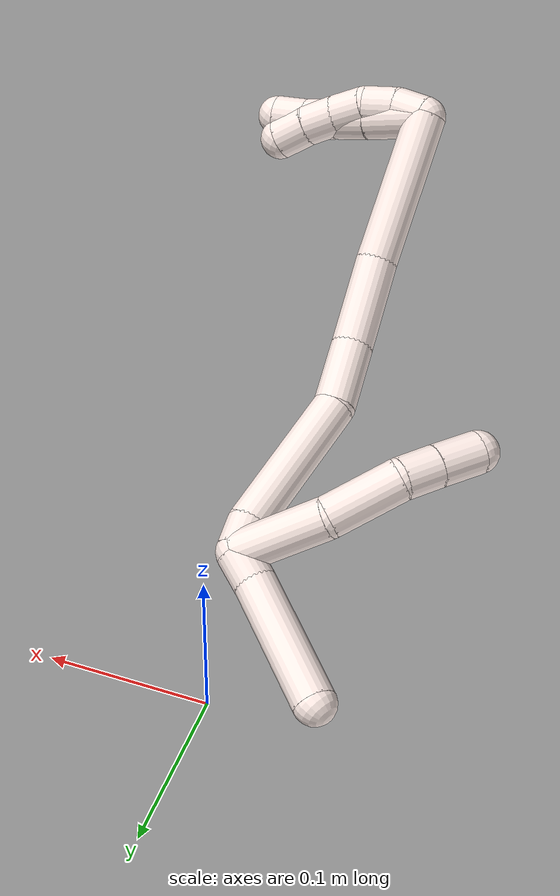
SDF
<sdf version="1.7">
 <world name="default">
  <model name="11">
   <static>0</static>
   <link name="11">
    <collision name="collision-cylinder-e_1_2_8">
     <pose>-0.007079 -0.024327 -0.011991 2.02875 -0.255302 -0.407002</pose>
     <geometry><cylinder><radius>0.0125</radius><length>0.05606</length></cylinder></geometry>
     <surface>
      <friction><ode><mu>1.16</mu><mu2>1.16</mu2><slip1>0</slip1><slip2>0</slip2></ode></friction>
      <contact><ode><kp>1e+06</kp><kd>1</kd><max_vel>0</max_vel><min_depth>0.001</min_depth></ode></contact>
     </surface>
    </collision>
    <visual name="visual-cylinder-e_1_2_8">
     <pose>-0.007079 -0.024327 -0.011991 2.02875 -0.255302 -0.407002</pose>
     <geometry><cylinder><radius>0.0125</radius><length>0.05606</length></cylinder></geometry>
     <material><ambient>1 0.933333 0.909804 1</ambient></material>
    </visual>
    <collision name="collision-cylinder-e_2_8_9">
     <pose>-0.014983 -0.07062 -0.029324 1.80937 -0.036519 -0.046463</pose>
     <geometry><cylinder><radius>0.0125</radius><length>0.045243</length></cylinder></geometry>
     <surface>
      <friction><ode><mu>1.16</mu><mu2>1.16</mu2><slip1>0</slip1><slip2>0</slip2></ode></friction>
      <contact><ode><kp>1e+06</kp><kd>1</kd><max_vel>0</max_vel><min_depth>0.001</min_depth></ode></contact>
     </surface>
    </collision>
    <visual name="visual-cylinder-e_2_8_9">
     <pose>-0.014983 -0.07062 -0.029324 1.80937 -0.036519 -0.046463</pose>
     <geometry><cylinder><radius>0.0125</radius><length>0.045243</length></cylinder></geometry>
     <material><ambient>1 0.933333 0.909804 1</ambient></material>
    </visual>
    <collision name="collision-cylinder-e_3_9_10">
     <pose>-0.012526 -0.102871 -0.037179 1.81037 0.300698 0.381216</pose>
     <geometry><cylinder><radius>0.0125</radius><length>0.02217</length></cylinder></geometry>
     <surface>
      <friction><ode><mu>1.16</mu><mu2>1.16</mu2><slip1>0</slip1><slip2>0</slip2></ode></friction>
      <contact><ode><kp>1e+06</kp><kd>1</kd><max_vel>0</max_vel><min_depth>0.001</min_depth></ode></contact>
     </surface>
    </collision>
    <visual name="visual-cylinder-e_3_9_10">
     <pose>-0.012526 -0.102871 -0.037179 1.81037 0.300698 0.381216</pose>
     <geometry><cylinder><radius>0.0125</radius><length>0.02217</length></cylinder></geometry>
     <material><ambient>1 0.933333 0.909804 1</ambient></material>
    </visual>
    <collision name="collision-cylinder-e_4_10_6">
     <pose>-0.005099 -0.125358 -0.042829 1.82254 0.317753 0.407566</pose>
     <geometry><cylinder><radius>0.0125</radius><length>0.026527</length></cylinder></geometry>
     <surface>
      <friction><ode><mu>1.16</mu><mu2>1.16</mu2><slip1>0</slip1><slip2>0</slip2></ode></friction>
      <contact><ode><kp>1e+06</kp><kd>1</kd><max_vel>0</max_vel><min_depth>0.001</min_depth></ode></contact>
     </surface>
    </collision>
    <visual name="visual-cylinder-e_4_10_6">
     <pose>-0.005099 -0.125358 -0.042829 1.82254 0.317753 0.407566</pose>
     <geometry><cylinder><radius>0.0125</radius><length>0.026527</length></cylinder></geometry>
     <material><ambient>1 0.933333 0.909804 1</ambient></material>
    </visual>
    <collision name="collision-cylinder-e_1_2_11">
     <pose>0.000816 0.001931 -0.010253 -2.95542 0.078021 -0.791978</pose>
     <geometry><cylinder><radius>0.0125</radius><length>0.020931</length></cylinder></geometry>
     <surface>
      <friction><ode><mu>1.16</mu><mu2>1.16</mu2><slip1>0</slip1><slip2>0</slip2></ode></friction>
      <contact><ode><kp>1e+06</kp><kd>1</kd><max_vel>0</max_vel><min_depth>0.001</min_depth></ode></contact>
     </surface>
    </collision>
    <visual name="visual-cylinder-e_1_2_11">
     <pose>0.000816 0.001931 -0.010253 -2.95542 0.078021 -0.791978</pose>
     <geometry><cylinder><radius>0.0125</radius><length>0.020931</length></cylinder></geometry>
     <material><ambient>1 0.933333 0.909804 1</ambient></material>
    </visual>
    <collision name="collision-cylinder-e_2_11_5">
     <pose>-0.001708 0.013312 -0.05875 -2.89935 -0.084577 0.669146</pose>
     <geometry><cylinder><radius>0.0125</radius><length>0.079069</length></cylinder></geometry>
     <surface>
      <friction><ode><mu>1.16</mu><mu2>1.16</mu2><slip1>0</slip1><slip2>0</slip2></ode></friction>
      <contact><ode><kp>1e+06</kp><kd>1</kd><max_vel>0</max_vel><min_depth>0.001</min_depth></ode></contact>
     </surface>
    </collision>
    <visual name="visual-cylinder-e_2_11_5">
     <pose>-0.001708 0.013312 -0.05875 -2.89935 -0.084577 0.669146</pose>
     <geometry><cylinder><radius>0.0125</radius><length>0.079069</length></cylinder></geometry>
     <material><ambient>1 0.933333 0.909804 1</ambient></material>
    </visual>
    <collision name="collision-cylinder-e_1_2_12">
     <pose>0.002689 -0.008013 0.005782 0.945713 0.265652 0.136491</pose>
     <geometry><cylinder><radius>0.0125</radius><length>0.020482</length></cylinder></geometry>
     <surface>
      <friction><ode><mu>1.16</mu><mu2>1.16</mu2><slip1>0</slip1><slip2>0</slip2></ode></friction>
      <contact><ode><kp>1e+06</kp><kd>1</kd><max_vel>0</max_vel><min_depth>0.001</min_depth></ode></contact>
     </surface>
    </collision>
    <visual name="visual-cylinder-e_1_2_12">
     <pose>0.002689 -0.008013 0.005782 0.945713 0.265652 0.136491</pose>
     <geometry><cylinder><radius>0.0125</radius><length>0.020482</length></cylinder></geometry>
     <material><ambient>1 0.933333 0.909804 1</ambient></material>
    </visual>
    <collision name="collision-cylinder-e_2_12_13">
     <pose>0.010461 -0.05803 0.024986 1.26153 0.114794 0.083875</pose>
     <geometry><cylinder><radius>0.0125</radius><length>0.088776</length></cylinder></geometry>
     <surface>
      <friction><ode><mu>1.16</mu><mu2>1.16</mu2><slip1>0</slip1><slip2>0</slip2></ode></friction>
      <contact><ode><kp>1e+06</kp><kd>1</kd><max_vel>0</max_vel><min_depth>0.001</min_depth></ode></contact>
     </surface>
    </collision>
    <visual name="visual-cylinder-e_2_12_13">
     <pose>0.010461 -0.05803 0.024986 1.26153 0.114794 0.083875</pose>
     <geometry><cylinder><radius>0.0125</radius><length>0.088776</length></cylinder></geometry>
     <material><ambient>1 0.933333 0.909804 1</ambient></material>
    </visual>
    <collision name="collision-cylinder-e_3_13_14">
     <pose>0.016997 -0.116756 0.050495 0.944838 0.070204 0.035886</pose>
     <geometry><cylinder><radius>0.0125</radius><length>0.041369</length></cylinder></geometry>
     <surface>
      <friction><ode><mu>1.16</mu><mu2>1.16</mu2><slip1>0</slip1><slip2>0</slip2></ode></friction>
      <contact><ode><kp>1e+06</kp><kd>1</kd><max_vel>0</max_vel><min_depth>0.001</min_depth></ode></contact>
     </surface>
    </collision>
    <visual name="visual-cylinder-e_3_13_14">
     <pose>0.016997 -0.116756 0.050495 0.944838 0.070204 0.035886</pose>
     <geometry><cylinder><radius>0.0125</radius><length>0.041369</length></cylinder></geometry>
     <material><ambient>1 0.933333 0.909804 1</ambient></material>
    </visual>
    <collision name="collision-cylinder-e_4_14_15">
     <pose>0.015084 -0.156402 0.077637 0.989762 -0.122028 -0.065913</pose>
     <geometry><cylinder><radius>0.0125</radius><length>0.055262</length></cylinder></geometry>
     <surface>
      <friction><ode><mu>1.16</mu><mu2>1.16</mu2><slip1>0</slip1><slip2>0</slip2></ode></friction>
      <contact><ode><kp>1e+06</kp><kd>1</kd><max_vel>0</max_vel><min_depth>0.001</min_depth></ode></contact>
     </surface>
    </collision>
    <visual name="visual-cylinder-e_4_14_15">
     <pose>0.015084 -0.156402 0.077637 0.989762 -0.122028 -0.065913</pose>
     <geometry><cylinder><radius>0.0125</radius><length>0.055262</length></cylinder></geometry>
     <material><ambient>1 0.933333 0.909804 1</ambient></material>
    </visual>
    <collision name="collision-cylinder-e_5_15_1">
     <pose>0.000209 -0.219277 0.114729 1.06671 -0.247161 -0.146417</pose>
     <geometry><cylinder><radius>0.0125</radius><length>0.094111</length></cylinder></geometry>
     <surface>
      <friction><ode><mu>1.16</mu><mu2>1.16</mu2><slip1>0</slip1><slip2>0</slip2></ode></friction>
      <contact><ode><kp>1e+06</kp><kd>1</kd><max_vel>0</max_vel><min_depth>0.001</min_depth></ode></contact>
     </surface>
    </collision>
    <visual name="visual-cylinder-e_5_15_1">
     <pose>0.000209 -0.219277 0.114729 1.06671 -0.247161 -0.146417</pose>
     <geometry><cylinder><radius>0.0125</radius><length>0.094111</length></cylinder></geometry>
     <material><ambient>1 0.933333 0.909804 1</ambient></material>
    </visual>
    <collision name="collision-cylinder-e_1_1_16">
     <pose>-0.010223 -0.255882 0.146128 -0.343263 0.1083 -0.01879</pose>
     <geometry><cylinder><radius>0.0125</radius><length>0.02</length></cylinder></geometry>
     <surface>
      <friction><ode><mu>1.16</mu><mu2>1.16</mu2><slip1>0</slip1><slip2>0</slip2></ode></friction>
      <contact><ode><kp>1e+06</kp><kd>1</kd><max_vel>0</max_vel><min_depth>0.001</min_depth></ode></contact>
     </surface>
    </collision>
    <visual name="visual-cylinder-e_1_1_16">
     <pose>-0.010223 -0.255882 0.146128 -0.343263 0.1083 -0.01879</pose>
     <geometry><cylinder><radius>0.0125</radius><length>0.02</length></cylinder></geometry>
     <material><ambient>1 0.933333 0.909804 1</ambient></material>
    </visual>
    <collision name="collision-cylinder-e_2_16_17">
     <pose>-0.008488 -0.246293 0.163274 -0.675959 0.065458 -0.023013</pose>
     <geometry><cylinder><radius>0.0125</radius><length>0.02</length></cylinder></geometry>
     <surface>
      <friction><ode><mu>1.16</mu><mu2>1.16</mu2><slip1>0</slip1><slip2>0</slip2></ode></friction>
      <contact><ode><kp>1e+06</kp><kd>1</kd><max_vel>0</max_vel><min_depth>0.001</min_depth></ode></contact>
     </surface>
    </collision>
    <visual name="visual-cylinder-e_2_16_17">
     <pose>-0.008488 -0.246293 0.163274 -0.675959 0.065458 -0.023013</pose>
     <geometry><cylinder><radius>0.0125</radius><length>0.02</length></cylinder></geometry>
     <material><ambient>1 0.933333 0.909804 1</ambient></material>
    </visual>
    <collision name="collision-cylinder-e_3_17_18">
     <pose>-0.004312 -0.232946 0.177151 -0.86183 0.359837 -0.166848</pose>
     <geometry><cylinder><radius>0.0125</radius><length>0.02</length></cylinder></geometry>
     <surface>
      <friction><ode><mu>1.16</mu><mu2>1.16</mu2><slip1>0</slip1><slip2>0</slip2></ode></friction>
      <contact><ode><kp>1e+06</kp><kd>1</kd><max_vel>0</max_vel><min_depth>0.001</min_depth></ode></contact>
     </surface>
    </collision>
    <visual name="visual-cylinder-e_3_17_18">
     <pose>-0.004312 -0.232946 0.177151 -0.86183 0.359837 -0.166848</pose>
     <geometry><cylinder><radius>0.0125</radius><length>0.02</length></cylinder></geometry>
     <material><ambient>1 0.933333 0.909804 1</ambient></material>
    </visual>
    <collision name="collision-cylinder-e_4_18_19">
     <pose>0.002166 -0.21799 0.188687 -0.964677 0.30019 -0.158037</pose>
     <geometry><cylinder><radius>0.0125</radius><length>0.02</length></cylinder></geometry>
     <surface>
      <friction><ode><mu>1.16</mu><mu2>1.16</mu2><slip1>0</slip1><slip2>0</slip2></ode></friction>
      <contact><ode><kp>1e+06</kp><kd>1</kd><max_vel>0</max_vel><min_depth>0.001</min_depth></ode></contact>
     </surface>
    </collision>
    <visual name="visual-cylinder-e_4_18_19">
     <pose>0.002166 -0.21799 0.188687 -0.964677 0.30019 -0.158037</pose>
     <geometry><cylinder><radius>0.0125</radius><length>0.02</length></cylinder></geometry>
     <material><ambient>1 0.933333 0.909804 1</ambient></material>
    </visual>
    <collision name="collision-cylinder-e_5_19_4">
     <pose>0.00873 -0.202017 0.198713 -1.05703 0.369076 -0.217135</pose>
     <geometry><cylinder><radius>0.0125</radius><length>0.02</length></cylinder></geometry>
     <surface>
      <friction><ode><mu>1.16</mu><mu2>1.16</mu2><slip1>0</slip1><slip2>0</slip2></ode></friction>
      <contact><ode><kp>1e+06</kp><kd>1</kd><max_vel>0</max_vel><min_depth>0.001</min_depth></ode></contact>
     </surface>
    </collision>
    <visual name="visual-cylinder-e_5_19_4">
     <pose>0.00873 -0.202017 0.198713 -1.05703 0.369076 -0.217135</pose>
     <geometry><cylinder><radius>0.0125</radius><length>0.02</length></cylinder></geometry>
     <material><ambient>1 0.933333 0.909804 1</ambient></material>
    </visual>
    <collision name="collision-cylinder-e_1_1_20">
     <pose>-0.00663 -0.248403 0.151214 -0.642989 0.253314 -0.084769</pose>
     <geometry><cylinder><radius>0.0125</radius><length>0.037296</length></cylinder></geometry>
     <surface>
      <friction><ode><mu>1.16</mu><mu2>1.16</mu2><slip1>0</slip1><slip2>0</slip2></ode></friction>
      <contact><ode><kp>1e+06</kp><kd>1</kd><max_vel>0</max_vel><min_depth>0.001</min_depth></ode></contact>
     </surface>
    </collision>
    <visual name="visual-cylinder-e_1_1_20">
     <pose>-0.00663 -0.248403 0.151214 -0.642989 0.253314 -0.084769</pose>
     <geometry><cylinder><radius>0.0125</radius><length>0.037296</length></cylinder></geometry>
     <material><ambient>1 0.933333 0.909804 1</ambient></material>
    </visual>
    <collision name="collision-cylinder-e_2_20_21">
     <pose>0.000625 -0.231612 0.174482 -0.594807 0.237838 -0.073209</pose>
     <geometry><cylinder><radius>0.0125</radius><length>0.021915</length></cylinder></geometry>
     <surface>
      <friction><ode><mu>1.16</mu><mu2>1.16</mu2><slip1>0</slip1><slip2>0</slip2></ode></friction>
      <contact><ode><kp>1e+06</kp><kd>1</kd><max_vel>0</max_vel><min_depth>0.001</min_depth></ode></contact>
     </surface>
    </collision>
    <visual name="visual-cylinder-e_2_20_21">
     <pose>0.000625 -0.231612 0.174482 -0.594807 0.237838 -0.073209</pose>
     <geometry><cylinder><radius>0.0125</radius><length>0.021915</length></cylinder></geometry>
     <material><ambient>1 0.933333 0.909804 1</ambient></material>
    </visual>
    <collision name="collision-cylinder-e_3_21_22">
     <pose>0.005677 -0.219805 0.191516 -0.618075 0.240441 -0.077098</pose>
     <geometry><cylinder><radius>0.0125</radius><length>0.020753</length></cylinder></geometry>
     <surface>
      <friction><ode><mu>1.16</mu><mu2>1.16</mu2><slip1>0</slip1><slip2>0</slip2></ode></friction>
      <contact><ode><kp>1e+06</kp><kd>1</kd><max_vel>0</max_vel><min_depth>0.001</min_depth></ode></contact>
     </surface>
    </collision>
    <visual name="visual-cylinder-e_3_21_22">
     <pose>0.005677 -0.219805 0.191516 -0.618075 0.240441 -0.077098</pose>
     <geometry><cylinder><radius>0.0125</radius><length>0.020753</length></cylinder></geometry>
     <material><ambient>1 0.933333 0.909804 1</ambient></material>
    </visual>
    <collision name="collision-cylinder-e_4_22_3">
     <pose>0.009175 -0.20858 0.208115 -0.570835 0.102675 -0.030152</pose>
     <geometry><cylinder><radius>0.0125</radius><length>0.020036</length></cylinder></geometry>
     <surface>
      <friction><ode><mu>1.16</mu><mu2>1.16</mu2><slip1>0</slip1><slip2>0</slip2></ode></friction>
      <contact><ode><kp>1e+06</kp><kd>1</kd><max_vel>0</max_vel><min_depth>0.001</min_depth></ode></contact>
     </surface>
    </collision>
    <visual name="visual-cylinder-e_4_22_3">
     <pose>0.009175 -0.20858 0.208115 -0.570835 0.102675 -0.030152</pose>
     <geometry><cylinder><radius>0.0125</radius><length>0.020036</length></cylinder></geometry>
     <material><ambient>1 0.933333 0.909804 1</ambient></material>
    </visual>
    <collision name="collision-sphere-3">
     <pose>0.010202 -0.203196 0.2165 0 -0 0</pose>
     <geometry><sphere><radius>0.0125</radius></sphere></geometry>
     <surface>
      <friction><ode><mu>1.16</mu><mu2>1.16</mu2><slip1>0</slip1><slip2>0</slip2></ode></friction>
      <contact><ode><kp>1e+06</kp><kd>1</kd><max_vel>0</max_vel><min_depth>0.001</min_depth></ode></contact>
     </surface>
    </collision>
    <visual name="visual-sphere-3">
     <pose>0.010202 -0.203196 0.2165 0 -0 0</pose>
     <geometry><sphere><radius>0.0125</radius></sphere></geometry>
     <material><ambient>1 0.933333 0.909804 1</ambient></material>
    </visual>
    <collision name="collision-sphere-22">
     <pose>0.008148 -0.213965 0.199729 0 -0 0</pose>
     <geometry><sphere><radius>0.0125</radius></sphere></geometry>
     <surface>
      <friction><ode><mu>1.16</mu><mu2>1.16</mu2><slip1>0</slip1><slip2>0</slip2></ode></friction>
      <contact><ode><kp>1e+06</kp><kd>1</kd><max_vel>0</max_vel><min_depth>0.001</min_depth></ode></contact>
     </surface>
    </collision>
    <visual name="visual-sphere-22">
     <pose>0.008148 -0.213965 0.199729 0 -0 0</pose>
     <geometry><sphere><radius>0.0125</radius></sphere></geometry>
     <material><ambient>1 0.933333 0.909804 1</ambient></material>
    </visual>
    <collision name="collision-sphere-21">
     <pose>0.003207 -0.225645 0.183302 0 -0 0</pose>
     <geometry><sphere><radius>0.0125</radius></sphere></geometry>
     <surface>
      <friction><ode><mu>1.16</mu><mu2>1.16</mu2><slip1>0</slip1><slip2>0</slip2></ode></friction>
      <contact><ode><kp>1e+06</kp><kd>1</kd><max_vel>0</max_vel><min_depth>0.001</min_depth></ode></contact>
     </surface>
    </collision>
    <visual name="visual-sphere-21">
     <pose>0.003207 -0.225645 0.183302 0 -0 0</pose>
     <geometry><sphere><radius>0.0125</radius></sphere></geometry>
     <material><ambient>1 0.933333 0.909804 1</ambient></material>
    </visual>
    <collision name="collision-sphere-20">
     <pose>-0.001957 -0.237579 0.165662 0 -0 0</pose>
     <geometry><sphere><radius>0.0125</radius></sphere></geometry>
     <surface>
      <friction><ode><mu>1.16</mu><mu2>1.16</mu2><slip1>0</slip1><slip2>0</slip2></ode></friction>
      <contact><ode><kp>1e+06</kp><kd>1</kd><max_vel>0</max_vel><min_depth>0.001</min_depth></ode></contact>
     </surface>
    </collision>
    <visual name="visual-sphere-20">
     <pose>-0.001957 -0.237579 0.165662 0 -0 0</pose>
     <geometry><sphere><radius>0.0125</radius></sphere></geometry>
     <material><ambient>1 0.933333 0.909804 1</ambient></material>
    </visual>
    <collision name="collision-sphere-4">
     <pose>0.012338 -0.193894 0.203296 0 -0 0</pose>
     <geometry><sphere><radius>0.0125</radius></sphere></geometry>
     <surface>
      <friction><ode><mu>1.16</mu><mu2>1.16</mu2><slip1>0</slip1><slip2>0</slip2></ode></friction>
      <contact><ode><kp>1e+06</kp><kd>1</kd><max_vel>0</max_vel><min_depth>0.001</min_depth></ode></contact>
     </surface>
    </collision>
    <visual name="visual-sphere-4">
     <pose>0.012338 -0.193894 0.203296 0 -0 0</pose>
     <geometry><sphere><radius>0.0125</radius></sphere></geometry>
     <material><ambient>1 0.933333 0.909804 1</ambient></material>
    </visual>
    <collision name="collision-sphere-11">
     <pose>0.001631 0.003863 -0.020507 0 -0 0</pose>
     <geometry><sphere><radius>0.0125</radius></sphere></geometry>
     <surface>
      <friction><ode><mu>1.16</mu><mu2>1.16</mu2><slip1>0</slip1><slip2>0</slip2></ode></friction>
      <contact><ode><kp>1e+06</kp><kd>1</kd><max_vel>0</max_vel><min_depth>0.001</min_depth></ode></contact>
     </surface>
    </collision>
    <visual name="visual-sphere-11">
     <pose>0.001631 0.003863 -0.020507 0 -0 0</pose>
     <geometry><sphere><radius>0.0125</radius></sphere></geometry>
     <material><ambient>1 0.933333 0.909804 1</ambient></material>
    </visual>
    <collision name="collision-sphere-6">
     <pose>-0.000955 -0.137561 -0.045968 0 -0 0</pose>
     <geometry><sphere><radius>0.0125</radius></sphere></geometry>
     <surface>
      <friction><ode><mu>1.16</mu><mu2>1.16</mu2><slip1>0</slip1><slip2>0</slip2></ode></friction>
      <contact><ode><kp>1e+06</kp><kd>1</kd><max_vel>0</max_vel><min_depth>0.001</min_depth></ode></contact>
     </surface>
    </collision>
    <visual name="visual-sphere-6">
     <pose>-0.000955 -0.137561 -0.045968 0 -0 0</pose>
     <geometry><sphere><radius>0.0125</radius></sphere></geometry>
     <material><ambient>1 0.933333 0.909804 1</ambient></material>
    </visual>
    <collision name="collision-sphere-10">
     <pose>-0.009243 -0.113156 -0.039691 0 -0 0</pose>
     <geometry><sphere><radius>0.0125</radius></sphere></geometry>
     <surface>
      <friction><ode><mu>1.16</mu><mu2>1.16</mu2><slip1>0</slip1><slip2>0</slip2></ode></friction>
      <contact><ode><kp>1e+06</kp><kd>1</kd><max_vel>0</max_vel><min_depth>0.001</min_depth></ode></contact>
     </surface>
    </collision>
    <visual name="visual-sphere-10">
     <pose>-0.009243 -0.113156 -0.039691 0 -0 0</pose>
     <geometry><sphere><radius>0.0125</radius></sphere></geometry>
     <material><ambient>1 0.933333 0.909804 1</ambient></material>
    </visual>
    <collision name="collision-sphere-9">
     <pose>-0.015809 -0.092585 -0.034666 0 -0 0</pose>
     <geometry><sphere><radius>0.0125</radius></sphere></geometry>
     <surface>
      <friction><ode><mu>1.16</mu><mu2>1.16</mu2><slip1>0</slip1><slip2>0</slip2></ode></friction>
      <contact><ode><kp>1e+06</kp><kd>1</kd><max_vel>0</max_vel><min_depth>0.001</min_depth></ode></contact>
     </surface>
    </collision>
    <visual name="visual-sphere-9">
     <pose>-0.015809 -0.092585 -0.034666 0 -0 0</pose>
     <geometry><sphere><radius>0.0125</radius></sphere></geometry>
     <material><ambient>1 0.933333 0.909804 1</ambient></material>
    </visual>
    <collision name="collision-sphere-2">
     <geometry><sphere><radius>0.0125</radius></sphere></geometry>
     <surface>
      <friction><ode><mu>1.16</mu><mu2>1.16</mu2><slip1>0</slip1><slip2>0</slip2></ode></friction>
      <contact><ode><kp>1e+06</kp><kd>1</kd><max_vel>0</max_vel><min_depth>0.001</min_depth></ode></contact>
     </surface>
    </collision>
    <visual name="visual-sphere-2">
     <geometry><sphere><radius>0.0125</radius></sphere></geometry>
     <material><ambient>1 0.933333 0.909804 1</ambient></material>
    </visual>
    <collision name="collision-sphere-19">
     <pose>0.005123 -0.210139 0.194129 0 -0 0</pose>
     <geometry><sphere><radius>0.0125</radius></sphere></geometry>
     <surface>
      <friction><ode><mu>1.16</mu><mu2>1.16</mu2><slip1>0</slip1><slip2>0</slip2></ode></friction>
      <contact><ode><kp>1e+06</kp><kd>1</kd><max_vel>0</max_vel><min_depth>0.001</min_depth></ode></contact>
     </surface>
    </collision>
    <visual name="visual-sphere-19">
     <pose>0.005123 -0.210139 0.194129 0 -0 0</pose>
     <geometry><sphere><radius>0.0125</radius></sphere></geometry>
     <material><ambient>1 0.933333 0.909804 1</ambient></material>
    </visual>
    <collision name="collision-sphere-8">
     <pose>-0.014157 -0.048654 -0.023982 0 -0 0</pose>
     <geometry><sphere><radius>0.0125</radius></sphere></geometry>
     <surface>
      <friction><ode><mu>1.16</mu><mu2>1.16</mu2><slip1>0</slip1><slip2>0</slip2></ode></friction>
      <contact><ode><kp>1e+06</kp><kd>1</kd><max_vel>0</max_vel><min_depth>0.001</min_depth></ode></contact>
     </surface>
    </collision>
    <visual name="visual-sphere-8">
     <pose>-0.014157 -0.048654 -0.023982 0 -0 0</pose>
     <geometry><sphere><radius>0.0125</radius></sphere></geometry>
     <material><ambient>1 0.933333 0.909804 1</ambient></material>
    </visual>
    <collision name="collision-sphere-5">
     <pose>-0.005048 0.022762 -0.096993 0 -0 0</pose>
     <geometry><sphere><radius>0.0125</radius></sphere></geometry>
     <surface>
      <friction><ode><mu>1.16</mu><mu2>1.16</mu2><slip1>0</slip1><slip2>0</slip2></ode></friction>
      <contact><ode><kp>1e+06</kp><kd>1</kd><max_vel>0</max_vel><min_depth>0.001</min_depth></ode></contact>
     </surface>
    </collision>
    <visual name="visual-sphere-5">
     <pose>-0.005048 0.022762 -0.096993 0 -0 0</pose>
     <geometry><sphere><radius>0.0125</radius></sphere></geometry>
     <material><ambient>1 0.933333 0.909804 1</ambient></material>
    </visual>
    <collision name="collision-sphere-12">
     <pose>0.005377 -0.016026 0.011565 0 -0 0</pose>
     <geometry><sphere><radius>0.0125</radius></sphere></geometry>
     <surface>
      <friction><ode><mu>1.16</mu><mu2>1.16</mu2><slip1>0</slip1><slip2>0</slip2></ode></friction>
      <contact><ode><kp>1e+06</kp><kd>1</kd><max_vel>0</max_vel><min_depth>0.001</min_depth></ode></contact>
     </surface>
    </collision>
    <visual name="visual-sphere-12">
     <pose>0.005377 -0.016026 0.011565 0 -0 0</pose>
     <geometry><sphere><radius>0.0125</radius></sphere></geometry>
     <material><ambient>1 0.933333 0.909804 1</ambient></material>
    </visual>
    <collision name="collision-sphere-13">
     <pose>0.015546 -0.100034 0.038407 0 -0 0</pose>
     <geometry><sphere><radius>0.0125</radius></sphere></geometry>
     <surface>
      <friction><ode><mu>1.16</mu><mu2>1.16</mu2><slip1>0</slip1><slip2>0</slip2></ode></friction>
      <contact><ode><kp>1e+06</kp><kd>1</kd><max_vel>0</max_vel><min_depth>0.001</min_depth></ode></contact>
     </surface>
    </collision>
    <visual name="visual-sphere-13">
     <pose>0.015546 -0.100034 0.038407 0 -0 0</pose>
     <geometry><sphere><radius>0.0125</radius></sphere></geometry>
     <material><ambient>1 0.933333 0.909804 1</ambient></material>
    </visual>
    <collision name="collision-sphere-14">
     <pose>0.018448 -0.133477 0.062584 0 -0 0</pose>
     <geometry><sphere><radius>0.0125</radius></sphere></geometry>
     <surface>
      <friction><ode><mu>1.16</mu><mu2>1.16</mu2><slip1>0</slip1><slip2>0</slip2></ode></friction>
      <contact><ode><kp>1e+06</kp><kd>1</kd><max_vel>0</max_vel><min_depth>0.001</min_depth></ode></contact>
     </surface>
    </collision>
    <visual name="visual-sphere-14">
     <pose>0.018448 -0.133477 0.062584 0 -0 0</pose>
     <geometry><sphere><radius>0.0125</radius></sphere></geometry>
     <material><ambient>1 0.933333 0.909804 1</ambient></material>
    </visual>
    <collision name="collision-sphere-15">
     <pose>0.011721 -0.179327 0.092691 0 -0 0</pose>
     <geometry><sphere><radius>0.0125</radius></sphere></geometry>
     <surface>
      <friction><ode><mu>1.16</mu><mu2>1.16</mu2><slip1>0</slip1><slip2>0</slip2></ode></friction>
      <contact><ode><kp>1e+06</kp><kd>1</kd><max_vel>0</max_vel><min_depth>0.001</min_depth></ode></contact>
     </surface>
    </collision>
    <visual name="visual-sphere-15">
     <pose>0.011721 -0.179327 0.092691 0 -0 0</pose>
     <geometry><sphere><radius>0.0125</radius></sphere></geometry>
     <material><ambient>1 0.933333 0.909804 1</ambient></material>
    </visual>
    <collision name="collision-sphere-1">
     <pose>-0.011304 -0.259228 0.136766 0 -0 0</pose>
     <geometry><sphere><radius>0.0125</radius></sphere></geometry>
     <surface>
      <friction><ode><mu>1.16</mu><mu2>1.16</mu2><slip1>0</slip1><slip2>0</slip2></ode></friction>
      <contact><ode><kp>1e+06</kp><kd>1</kd><max_vel>0</max_vel><min_depth>0.001</min_depth></ode></contact>
     </surface>
    </collision>
    <visual name="visual-sphere-1">
     <pose>-0.011304 -0.259228 0.136766 0 -0 0</pose>
     <geometry><sphere><radius>0.0125</radius></sphere></geometry>
     <material><ambient>1 0.933333 0.909804 1</ambient></material>
    </visual>
    <collision name="collision-sphere-18">
     <pose>-0.000791 -0.225841 0.183245 0 -0 0</pose>
     <geometry><sphere><radius>0.0125</radius></sphere></geometry>
     <surface>
      <friction><ode><mu>1.16</mu><mu2>1.16</mu2><slip1>0</slip1><slip2>0</slip2></ode></friction>
      <contact><ode><kp>1e+06</kp><kd>1</kd><max_vel>0</max_vel><min_depth>0.001</min_depth></ode></contact>
     </surface>
    </collision>
    <visual name="visual-sphere-18">
     <pose>-0.000791 -0.225841 0.183245 0 -0 0</pose>
     <geometry><sphere><radius>0.0125</radius></sphere></geometry>
     <material><ambient>1 0.933333 0.909804 1</ambient></material>
    </visual>
    <collision name="collision-sphere-16">
     <pose>-0.009142 -0.252536 0.155489 0 -0 0</pose>
     <geometry><sphere><radius>0.0125</radius></sphere></geometry>
     <surface>
      <friction><ode><mu>1.16</mu><mu2>1.16</mu2><slip1>0</slip1><slip2>0</slip2></ode></friction>
      <contact><ode><kp>1e+06</kp><kd>1</kd><max_vel>0</max_vel><min_depth>0.001</min_depth></ode></contact>
     </surface>
    </collision>
    <visual name="visual-sphere-16">
     <pose>-0.009142 -0.252536 0.155489 0 -0 0</pose>
     <geometry><sphere><radius>0.0125</radius></sphere></geometry>
     <material><ambient>1 0.933333 0.909804 1</ambient></material>
    </visual>
    <collision name="collision-sphere-17">
     <pose>-0.007834 -0.24005 0.171058 0 -0 0</pose>
     <geometry><sphere><radius>0.0125</radius></sphere></geometry>
     <surface>
      <friction><ode><mu>1.16</mu><mu2>1.16</mu2><slip1>0</slip1><slip2>0</slip2></ode></friction>
      <contact><ode><kp>1e+06</kp><kd>1</kd><max_vel>0</max_vel><min_depth>0.001</min_depth></ode></contact>
     </surface>
    </collision>
    <visual name="visual-sphere-17">
     <pose>-0.007834 -0.24005 0.171058 0 -0 0</pose>
     <geometry><sphere><radius>0.0125</radius></sphere></geometry>
     <material><ambient>1 0.933333 0.909804 1</ambient></material>
    </visual>
    <inertial>
     <pose>0.001013 -0.126241 0.061041 0 -0 0</pose>
     <mass>0.75</mass>
     <inertia>
      <ixx>0.000253</ixx>
      <ixy>0</ixy>
      <ixz>0</ixz>
      <iyy>3.6e-05</iyy>
      <iyz>0</iyz>
      <izz>0.000173</izz>
     </inertia>
    </inertial>
   </link>
   <pose>-0.006578 -0.034102 0.095451 -1.04488 1.11346 -1.61739</pose>
  </model>
 </world>
</sdf>
